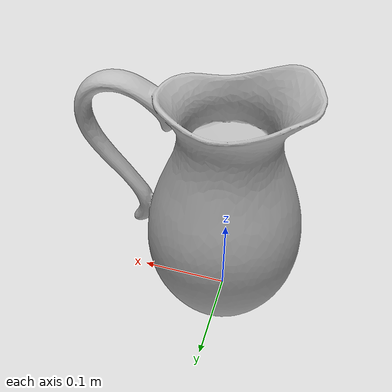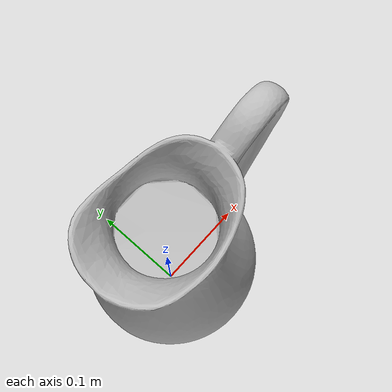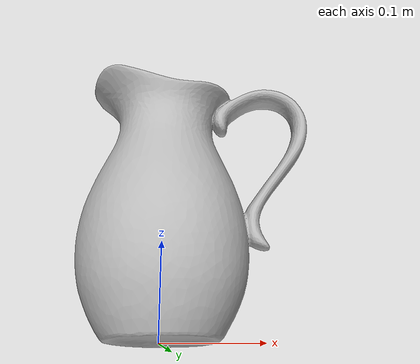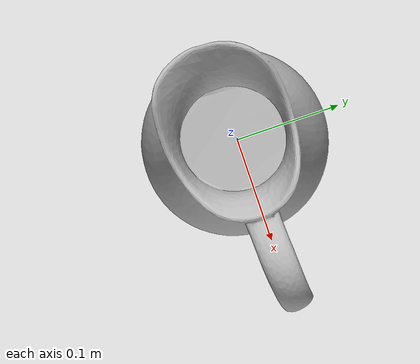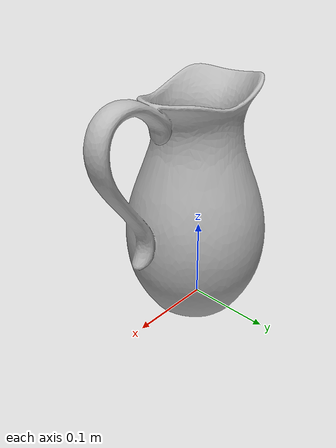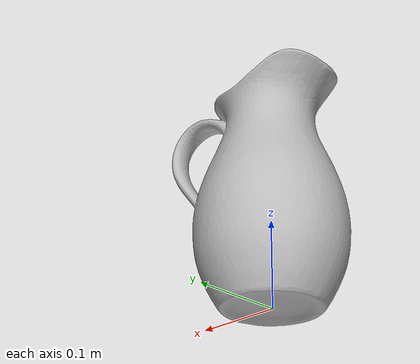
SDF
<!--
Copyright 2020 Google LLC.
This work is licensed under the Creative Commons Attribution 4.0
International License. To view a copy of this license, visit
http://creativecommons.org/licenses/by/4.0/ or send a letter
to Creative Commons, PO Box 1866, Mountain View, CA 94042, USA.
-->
<?xml version="1.0" ?>
<sdf version="1.6">
  <model name="Threshold_Porcelain_Pitcher_White">
    <link name="link_0">
      <inertial>
        <mass>0.75</mass>
        <inertia>
          <ixx>0.0141829</ixx>
          <ixy>0</ixy>
          <ixz>0</ixz>
          <iyy>0.0141829</iyy>
          <iyz>0</iyz>
          <izz>0.00264221</izz>
        </inertia>
        <pose frame=''>0 0 0.07 0 0 0</pose>

      </inertial>
      <visual name="visual">
        <geometry>
          <mesh>
            <uri>meshes/modelo_blender.obj</uri>
          </mesh>

        </geometry>
      </visual>
      <collision name="collision_0">
        <pose>0 0 0 0 0 0</pose>
        <max_contacts>2</max_contacts>
        <geometry>
          <mesh>
            <uri>meshes/cilindro.obj</uri>
          </mesh>
        </geometry>
      </collision>
    </link>
  </model>
</sdf>
